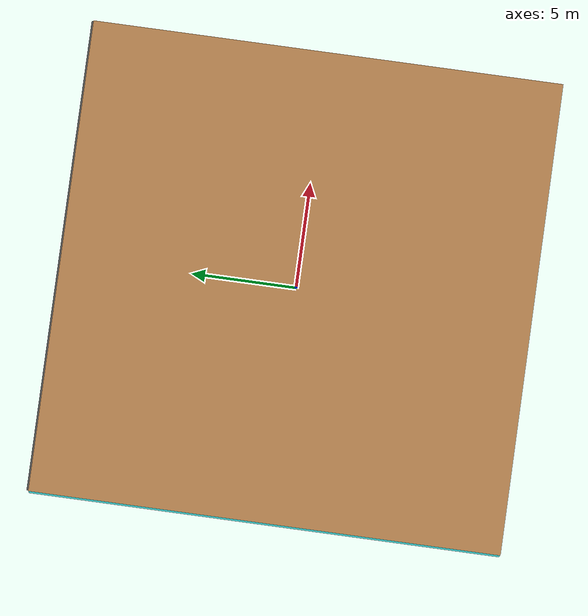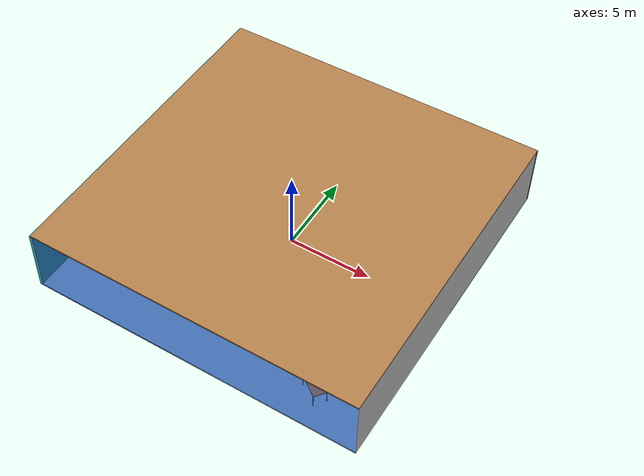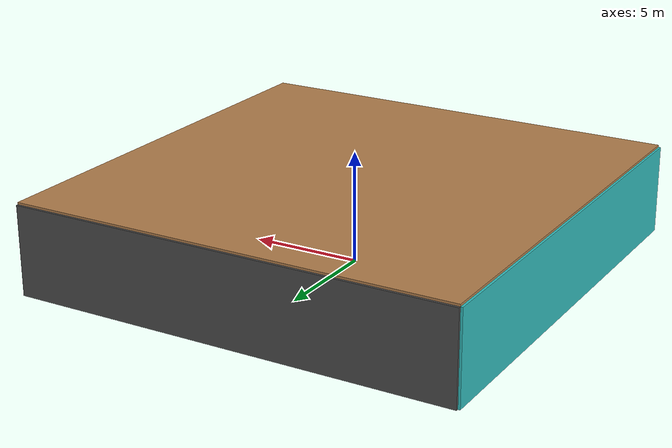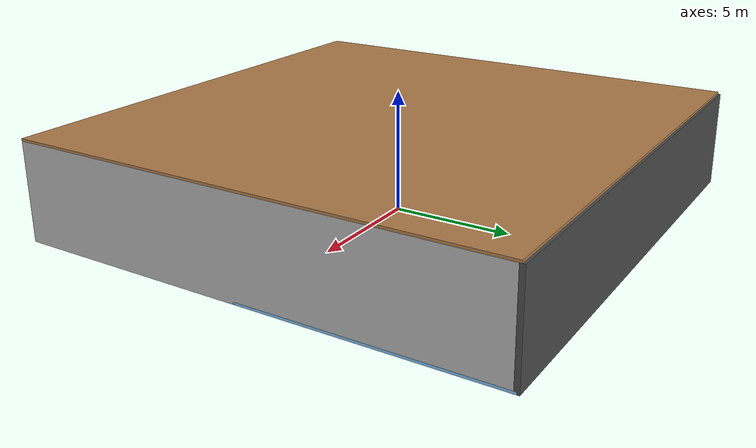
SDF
<sdf version="1.4">
 <world name="default">
  <physics type="ode">
   <max_step_size>0.001</max_step_size>
   <real_time_factor>1</real_time_factor>
   <real_time_update_rate>1000</real_time_update_rate>
   <gravity>0 0 -9.8</gravity>
  </physics>
  <scene><ambient>0.4 0.4 0.4 1</ambient><background>0.7 0.7 0.7 1</background><shadows>1</shadows></scene>
  <model name="Surrounding">
   <static>1</static>
   <link name="Ceiling">
    <collision name="Ceiling_Collision"><geometry><box><size>20 20 0.1</size></box></geometry></collision>
    <visual name="Ceiling_Visual">
     <geometry><box><size>20 20 0.1</size></box></geometry>
     <material>
      <script><uri>file://media/materials/scripts/gazebo.material</uri><name>Gazebo/WoodFloor</name></script>
     </material>
    </visual>
    <pose>0 0 4.05 0 0 0</pose>
   </link>
   <link name="Wall_South">
    <collision name="Wall_South_Collision">
     <geometry><box><size>20 0 4</size></box></geometry>
     <pose>0 0 2 0 -0 0</pose>
    </collision>
    <visual name="Wall_South_Visual">
     <pose>0 0 2 0 -0 0</pose>
     <geometry><box><size>20 0 4</size></box></geometry>
     <material>
      <script><uri>file://media/materials/scripts/gazebo.material</uri><name>Gazebo/BlueTransparent</name></script>
     </material>
    </visual>
    <velocity_decay><linear>0</linear><angular>0</angular></velocity_decay>
    <pose>0 -10 0 0 -0 0</pose>
   </link>
   <link name="Wall_East">
    <collision name="Wall_21_Collision">
     <geometry><box><size>20 0 4</size></box></geometry>
     <pose>0 0 2 0 -0 0</pose>
    </collision>
    <visual name="Wall_21_Visual">
     <pose>0 0 2 0 -0 0</pose>
     <geometry><box><size>20 0 4</size></box></geometry>
     <material>
      <script><uri>file://media/materials/scripts/gazebo.material</uri><name>Gazebo/PioneerBody</name></script>
     </material>
    </visual>
    <velocity_decay><linear>0</linear><angular>0</angular></velocity_decay>
    <pose>10 0 0 0 -0 1.5708</pose>
   </link>
   <link name="Wall_North">
    <collision name="Wall_22_Collision">
     <geometry><box><size>20 0.2 4</size></box></geometry>
     <pose>0 0 2 0 -0 0</pose>
    </collision>
    <visual name="Wall_22_Visual">
     <pose>0 0 2 0 -0 0</pose>
     <geometry><box><size>20 0.2 4</size></box></geometry>
     <material>
      <script><uri>file://media/materials/scripts/gazebo.material</uri><name>Gazebo/DarkGrey</name></script>
     </material>
    </visual>
    <velocity_decay><linear>0</linear><angular>0</angular></velocity_decay>
    <pose>0 10 0 0 -0 0</pose>
   </link>
   <link name="Wall_West">
    <collision name="Wall_23_Collision">
     <geometry><box><size>20 0.2 4</size></box></geometry>
     <pose>0 0 2 0 -0 0</pose>
    </collision>
    <visual name="Wall_23_Visual">
     <pose>0 0 2 0 -0 0</pose>
     <geometry><box><size>20 0.2 4</size></box></geometry>
     <material>
      <script><uri>file://media/materials/scripts/gazebo.material</uri><name>Gazebo/Turquoise</name></script>
     </material>
    </visual>
    <velocity_decay><linear>0</linear><angular>0</angular></velocity_decay>
    <pose>-10 0 0 0 0 -1.5708</pose>
   </link>
   <link name="Ground_link">
    <collision name="collision">
     <pose>0 0 .05 0 -0 0</pose>
     <geometry><box><size>20 20 0.1</size></box></geometry>
    </collision>
    <visual name="visual">
     <pose>0 0 .05 0 -0 0</pose>
     <geometry><box><size>20 20 0.1</size></box></geometry>
     <material>
      <script><uri>file://media/materials/scripts/gazebo.material</uri><name>Gazebo/SkyBlue</name></script>
     </material>
    </visual>
   </link>
   <static>1</static>
  </model>
  <spherical_coordinates>
   <surface_model>EARTH_WGS84</surface_model>
   <latitude_deg>0</latitude_deg>
   <longitude_deg>0</longitude_deg>
   <elevation>0</elevation>
   <heading_deg>0</heading_deg>
  </spherical_coordinates>
  <light name="lightball_0" type="diffuse">
   <diffuse>0.8 0.8 0.8 1</diffuse>
   <specular>0.2 0.2 0.2 1</specular>
   <attenuation>
    <range>100</range>
    <constant>0.7</constant>
    <linear>0.01</linear>
    <quadratic>0.001</quadratic>
   </attenuation>
   <direction>-0.5 0.1 -0.9</direction>
   <pose>6.13205017051 -9.75299838522 3.70720234917 0 0 0</pose>
  </light>
  <light name="lightball_1" type="diffuse">
   <diffuse>0.8 0.8 0.8 1</diffuse>
   <specular>0.2 0.2 0.2 1</specular>
   <attenuation>
    <range>100</range>
    <constant>0.7</constant>
    <linear>0.01</linear>
    <quadratic>0.001</quadratic>
   </attenuation>
   <direction>-0.5 0.1 -0.9</direction>
   <pose>-5.84200892797 2.98444818545 1.89208485884 0 0 0</pose>
  </light>
  <light name="lightball_2" type="diffuse">
   <diffuse>0.8 0.8 0.8 1</diffuse>
   <specular>0.2 0.2 0.2 1</specular>
   <attenuation>
    <range>100</range>
    <constant>0.7</constant>
    <linear>0.01</linear>
    <quadratic>0.001</quadratic>
   </attenuation>
   <direction>-0.5 0.1 -0.9</direction>
   <pose>6.81846284674 -6.68149352355 3.46263756795 0 0 0</pose>
  </light>
  <light name="lightball_3" type="diffuse">
   <diffuse>0.8 0.8 0.8 1</diffuse>
   <specular>0.2 0.2 0.2 1</specular>
   <attenuation>
    <range>100</range>
    <constant>0.7</constant>
    <linear>0.01</linear>
    <quadratic>0.001</quadratic>
   </attenuation>
   <direction>-0.5 0.1 -0.9</direction>
   <pose>-2.1017553503 0.327014374033 1.82100346306 0 0 0</pose>
  </light>
  <light name="lightball_4" type="diffuse">
   <diffuse>0.8 0.8 0.8 1</diffuse>
   <specular>0.2 0.2 0.2 1</specular>
   <attenuation>
    <range>100</range>
    <constant>0.7</constant>
    <linear>0.01</linear>
    <quadratic>0.001</quadratic>
   </attenuation>
   <direction>-0.5 0.1 -0.9</direction>
   <pose>1.93434856567 -6.50457261944 0.804580131225 0 0 0</pose>
  </light>
  <include><uri>model://cabinet</uri><pose>1.14503124828 7.16412977514 0 0 0 1.61688688132</pose></include>
  <include>
   <uri>model://robocup_3Dsim_goal</uri>
   <pose>5.64345822921 -4.3541900149 0 0 0 0.775216419666</pose>
  </include>
  <include><uri>model://table</uri><pose>6.47398900316 -8.10443756256 0 0 0 2.51038978676</pose></include>
  <include>
   <uri>model://construction_cone</uri>
   <pose>8.12505011966 -5.42423271523 0 0 0 2.27604656976</pose>
  </include>
  <include>
   <uri>model://robocup_3Dsim_goal</uri>
   <pose>7.8501795202 -1.86933360607 0 0 0 0.954385285786</pose>
  </include>
  <include><uri>model://table</uri><pose>7.02552141793 8.14617523686 0 0 0 3.00093468162</pose></include>
 </world>
</sdf>

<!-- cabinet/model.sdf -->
<sdf version="1.5">
  <model name="cabinet">
    <static>true</static>
    <link name="cabinet_bottom_plate">
      <inertial>
        <pose>0 0 -1 0 0 0</pose>
        <inertia>
          <ixx>2.050000</ixx>
          <ixy>0</ixy>
          <ixz>0</ixz>
          <iyy>2.050000</iyy>
          <iyz>0</iyz>
          <izz>2.050000</izz>
        </inertia>
        <mass>25.000000</mass>
      </inertial>
      <collision name="cabinet_bottom_plate_geom">
        <pose>0 0 0.010000 0 0 0</pose>
        <geometry>
          <box>
            <size>0.450000 0.450000 0.020000</size>
          </box>
        </geometry>
      </collision>
      <visual name="cabinet_bottom_plate_geom_visual">
        <pose>0 0 0.010000 0 0 0</pose>
        <geometry>
          <box>
            <size>0.450000 0.450000 0.020000</size>
          </box>
        </geometry>
        <material>
          <script>
            <uri>model://media/materials/scripts/gazebo.material</uri>
            <name>Gazebo/Wood</name>
          </script>
        </material>
      </visual>
      <collision name="cabinet_bottom_plate_geom_cabinet_back_plate">
        <pose>0.235000 0 0.510000 0 0 0</pose>
        <geometry>
          <box>
            <size>0.020000 0.450000 1.020000</size>
          </box>
        </geometry>
      </collision>
      <visual name="cabinet_bottom_plate_geom_cabinet_back_plate_visual">
        <pose>0.235000 0 0.510000 0 0 0</pose>
        <geometry>
          <box>
            <size>0.020000 0.450000 1.020000</size>
          </box>
        </geometry>
        <material>
          <script>
            <uri>model://media/materials/scripts/gazebo.material</uri>
            <name>Gazebo/Wood</name>
          </script>
        </material>
      </visual>
      <collision name="cabinet_bottom_plate_geom_cabinet_left_plate">
        <pose>0 0.235000 0.510000 0 0 0</pose>
        <geometry>
          <box>
            <size>0.450000 0.020000 1.020000</size>
          </box>
        </geometry>
      </collision>
      <visual name="cabinet_bottom_plate_geom_cabinet_left_plate_visual">
        <pose>0 0.235000 0.510000 0 0 0</pose>
        <geometry>
          <box>
            <size>0.450000 0.020000 1.020000</size>
          </box>
        </geometry>
        <material>
          <script>
            <uri>model://media/materials/scripts/gazebo.material</uri>
            <name>Gazebo/Wood</name>
          </script>
        </material>
      </visual>
      <collision name="cabinet_bottom_plate_geom_cabinet_middle_plate">
        <pose>0 0 0.510000 0 0 0</pose>
        <geometry>
          <box>
            <size>0.450000 0.450000 0.020000</size>
          </box>
        </geometry>
      </collision>
      <visual name="cabinet_bottom_plate_geom_cabinet_middle_plate_visual">
        <pose>0 0 0.510000 0 0 0</pose>
        <geometry>
          <box>
            <size>0.450000 0.450000 0.020000</size>
          </box>
        </geometry>
        <material>
          <script>
            <uri>model://media/materials/scripts/gazebo.material</uri>
            <name>Gazebo/Wood</name>
          </script>
        </material>
      </visual>
      <collision name="cabinet_bottom_plate_geom_cabinet_right_plate">
        <pose>0 -0.235000 0.510000 0 0 0</pose>
        <geometry>
          <box>
            <size>0.450000 0.020000 1.020000</size>
          </box>
        </geometry>
      </collision>
      <visual name="cabinet_bottom_plate_geom_cabinet_right_plate_visual">
        <pose>0 -0.235000 0.510000 0 0 0</pose>
        <geometry>
          <box>
            <size>0.450000 0.020000 1.020000</size>
          </box>
        </geometry>
        <material>
          <script>
            <uri>model://media/materials/scripts/gazebo.material</uri>
            <name>Gazebo/Wood</name>
          </script>
        </material>
      </visual>
      <collision name="cabinet_bottom_plate_geom_cabinet_top_plate">
        <pose>0 0 1.010000 0 0 0</pose>
        <geometry>
          <box>
            <size>0.450000 0.450000 0.020000</size>
          </box>
        </geometry>
      </collision>
      <visual name="cabinet_bottom_plate_geom_cabinet_top_plate_visual">
        <pose>0 0 1.010000 0 0 0</pose>
        <geometry>
          <box>
            <size>0.450000 0.450000 0.020000</size>
          </box>
        </geometry>
        <material>
          <script>
            <uri>model://media/materials/scripts/gazebo.material</uri>
            <name>Gazebo/Wood</name>
          </script>
        </material>
      </visual>
    </link>
  </model>
</sdf>

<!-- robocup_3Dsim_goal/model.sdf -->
<sdf version="1.5">
  <model name="robocup_3d_goal">
    <static>true</static>
    <link name="left_post">
      <pose>0 1.05 0.45 0 0 0</pose>
      <collision name="collision">
        <geometry>
          <cylinder>
            <radius>0.05</radius>
            <length>0.9</length>
          </cylinder>
        </geometry>
      </collision>
      <visual name="visual">
        <geometry>
          <cylinder>
            <radius>0.05</radius>
            <length>0.9</length>
          </cylinder>
        </geometry>
        <material>
          <script>
            <uri>file://media/materials/scripts/gazebo.material</uri>
            <name>Gazebo/ZincYellow</name>
          </script>
        </material>
      </visual>
    </link>
    <link name="left_support_horiz_lower">
      <pose>0.30 1.05 0.01 0 0 0</pose>
      <collision name="collision">
        <geometry>
          <box>
            <size>0.50 0.02 0.02</size>
          </box>
        </geometry>
      </collision>
      <visual name="visual">
        <geometry>
          <box>
            <size>0.50 0.02 0.02</size>
          </box>
        </geometry>
        <material>
          <script>
            <uri>file://media/materials/scripts/gazebo.material</uri>
            <name>Gazebo/White</name>
          </script>
        </material>
      </visual>
    </link>
    <link name="left_support_horiz_upper">
      <pose>0.30 1.05 0.79 0 0 0</pose>
      <collision name="collision">
        <geometry>
          <box>
            <size>0.50 0.02 0.02</size>
          </box>
        </geometry>
      </collision>
      <visual name="visual">
        <geometry>
          <box>
            <size>0.50 0.02 0.02</size>
          </box>
        </geometry>
        <material>
          <script>
            <uri>file://media/materials/scripts/gazebo.material</uri>
            <name>Gazebo/White</name>
          </script>
        </material>
      </visual>
    </link>
    <link name="left_support_vertical">
      <pose>0.56 1.05 0.4 0 1.5708 0</pose>
      <collision name="collision">
        <geometry>
          <box>
            <size>0.80 0.02 0.02</size>
          </box>
        </geometry>
      </collision>
      <visual name="visual">
        <geometry>
          <box>
            <size>0.80 0.02 0.02</size>
          </box>
        </geometry>
        <material>
          <script>
            <uri>file://media/materials/scripts/gazebo.material</uri>
            <name>Gazebo/White</name>
          </script>
        </material>
      </visual>
    </link>
    <link name="right_support_horiz_lower">
      <pose>0.30 -1.05 0.01 0 0 0</pose>
      <collision name="collision">
        <geometry>
          <box>
            <size>0.50 0.02 0.02</size>
          </box>
        </geometry>
      </collision>
      <visual name="visual">
        <geometry>
          <box>
            <size>0.50 0.02 0.02</size>
          </box>
        </geometry>
        <material>
          <script>
            <uri>file://media/materials/scripts/gazebo.material</uri>
            <name>Gazebo/White</name>
          </script>
        </material>
      </visual>
    </link>
    <link name="right_support_horiz_upper">
      <pose>0.30 -1.05 0.79 0 0 0</pose>
      <collision name="collision">
        <geometry>
          <box>
            <size>0.50 0.02 0.02</size>
          </box>
        </geometry>
      </collision>
      <visual name="visual">
        <geometry>
          <box>
            <size>0.50 0.02 0.02</size>
          </box>
        </geometry>
        <material>
          <script>
            <uri>file://media/materials/scripts/gazebo.material</uri>
            <name>Gazebo/White</name>
          </script>
        </material>
      </visual>
    </link>
    <link name="right_support_vertical">
      <pose>0.56 -1.05 0.4 0 1.5708 0</pose>
      <collision name="collision">
        <geometry>
          <box>
            <size>0.80 0.02 0.02</size>
          </box>
        </geometry>
      </collision>
      <visual name="visual">
        <geometry>
          <box>
            <size>0.80 0.02 0.02</size>
          </box>
        </geometry>
        <material>
          <script>
            <uri>file://media/materials/scripts/gazebo.material</uri>
            <name>Gazebo/White</name>
          </script>
        </material>
      </visual>
    </link>
    <link name="center_support_horiz_lower">
      <pose>0.56 0 0.01 0 1.5708 0</pose>
      <collision name="collision">
        <geometry>
          <box>
            <size>0.02 2.08 0.02</size>
          </box>
        </geometry>
      </collision>
      <visual name="visual">
        <geometry>
          <box>
            <size>0.02 2.08 0.02</size>
          </box>
        </geometry>
        <material>
          <script>
            <uri>file://media/materials/scripts/gazebo.material</uri>
            <name>Gazebo/White</name>
          </script>
        </material>
      </visual>
    </link>
    <link name="center_support_horiz_upper">
      <pose>0.56 0 0.79 0 1.5708 0</pose>
      <collision name="collision">
        <geometry>
          <box>
            <size>0.02 2.08 0.02</size>
          </box>
        </geometry>
      </collision>
      <visual name="visual">
        <geometry>
          <box>
            <size>0.02 2.08 0.02</size>
          </box>
        </geometry>
        <material>
          <script>
            <uri>file://media/materials/scripts/gazebo.material</uri>
            <name>Gazebo/White</name>
          </script>
        </material>
      </visual>
    </link>
    <link name="right_post">
      <pose>0 -1.05 0.45 0 0 0</pose>
      <collision name="collision">
        <geometry>
          <cylinder>
            <radius>0.05</radius>
            <length>0.9</length>
          </cylinder>
        </geometry>
      </collision>
      <visual name="visual">
        <geometry>
          <cylinder>
            <radius>0.05</radius>
            <length>0.9</length>
          </cylinder>
        </geometry>
        <material>
          <script>
            <uri>file://media/materials/scripts/gazebo.material</uri>
            <name>Gazebo/ZincYellow</name>
          </script>
        </material>
      </visual>
    </link>
    <link name="crossbar">
      <pose>0 0 0.85 1.57 1.57 0</pose>
      <collision name="collision">
        <geometry>
          <cylinder>
            <radius>0.05</radius>
            <length>2.0</length>
          </cylinder>
        </geometry>
      </collision>
      <visual name="visual">
        <geometry>
          <cylinder>
            <radius>0.05</radius>
            <length>2.0</length>
          </cylinder>
        </geometry>
        <material>
          <script>
            <uri>file://media/materials/scripts/gazebo.material</uri>
            <name>Gazebo/ZincYellow</name>
          </script>
        </material>
      </visual>
    </link>
    <link name="center_net">
      <pose>0.56 0 0.40 0 0 0</pose>
      <collision name="collision">
        <geometry>
          <box>
            <size>0.01 2.1 0.80</size>
          </box>
        </geometry>
      </collision>
      <visual name="visual">
        <geometry>
          <box>
            <size>0.01 2.1 0.80</size>
          </box>
        </geometry>
        <material>
          <script>
            <uri>model://../model_source/models/robocup09_spl_field/materials/scripts/</uri>
            <uri>model://../model_source/models/robocup09_spl_field/materials/textures/</uri>
            <name>RoboCup/Net</name>
          </script>
        </material>
      </visual>
    </link>
    <link name="left_net">
      <pose>0.30 1.05 0.40 0 0 0</pose>
      <collision name="collision">
        <geometry>
          <box>
            <size>0.50 0.01 0.76</size>
          </box>
        </geometry>
      </collision>
      <visual name="visual">
        <geometry>
          <box>
            <size>0.50 0.01 0.76</size>
          </box>
        </geometry>
        <material>
          <script>
            <uri>model://../model_source/models/robocup09_spl_field/materials/scripts/</uri>
            <uri>model://../model_source/models/robocup09_spl_field/materials/textures/</uri>
            <name>RoboCup/Net</name>
          </script>
        </material>
      </visual>
    </link>
    <link name="right_net">
      <pose>0.30 -1.05 0.40 0 0 0</pose>
      <collision name="collision">
        <geometry>
          <box>
            <size>0.50 0.01 0.76</size>
          </box>
        </geometry>
      </collision>
      <visual name="visual">
        <geometry>
          <box>
            <size>0.50 0.01 0.76</size>
          </box>
        </geometry>
        <material>
          <script>
            <uri>model://../model_source/models/robocup09_spl_field/materials/scripts/</uri>
            <uri>model://../model_source/models/robocup09_spl_field/materials/textures/</uri>
            <name>RoboCup/Net</name>
          </script>
        </material>
      </visual>
    </link>
  </model>
</sdf>

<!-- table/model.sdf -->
<sdf version="1.5">
  <model name="table">
    <static>true</static>
    <link name="link">
      <collision name="surface">
        <pose>0 0 1.0 0 0 0</pose>
        <geometry>
          <box>
            <size>1.5 0.8 0.03</size>
          </box>
        </geometry>
        <surface>
          <friction>
            <ode>
              <mu>0.6</mu>
              <mu2>0.6</mu2>
            </ode>
          </friction>
        </surface>
      </collision>
      <visual name="visual1">
        <pose>0 0 1.0 0 0 0</pose>
        <geometry>
          <box>
            <size>1.5 0.8 0.03</size>
          </box>
        </geometry>
        <material>
          <script>
            <uri>model://media/materials/scripts/gazebo.material</uri>
            <name>Gazebo/Wood</name>
          </script>
        </material>
      </visual>
      <collision name="front_left_leg">
        <pose>0.68 0.38 0.5 0 0 0</pose>
        <geometry>
          <cylinder>
            <radius>0.02</radius>
            <length>1.0</length>
          </cylinder>
        </geometry>
      </collision>
      <visual name="front_left_leg">
        <pose>0.68 0.38 0.5 0 0 0</pose>
        <geometry>
          <cylinder>
            <radius>0.02</radius>
            <length>1.0</length>
          </cylinder>
        </geometry>
        <material>
          <script>
            <uri>model://media/materials/scripts/gazebo.material</uri>
            <name>Gazebo/Grey</name>
          </script>
        </material>
      </visual>
      <collision name="front_right_leg">
        <pose>0.68 -0.38 0.5 0 0 0</pose>
        <geometry>
          <cylinder>
            <radius>0.02</radius>
            <length>1.0</length>
          </cylinder>
        </geometry>
      </collision>
      <visual name="front_right_leg">
        <pose>0.68 -0.38 0.5 0 0 0</pose>
        <geometry>
          <cylinder>
            <radius>0.02</radius>
            <length>1.0</length>
          </cylinder>
        </geometry>
        <material>
          <script>
            <uri>model://media/materials/scripts/gazebo.material</uri>
            <name>Gazebo/Grey</name>
          </script>
        </material>
      </visual>
      <collision name="back_right_leg">
        <pose>-0.68 -0.38 0.5 0 0 0</pose>
        <geometry>
          <cylinder>
            <radius>0.02</radius>
            <length>1.0</length>
          </cylinder>
        </geometry>
      </collision>
      <visual name="back_right_leg">
        <pose>-0.68 -0.38 0.5 0 0 0</pose>
        <geometry>
          <cylinder>
            <radius>0.02</radius>
            <length>1.0</length>
          </cylinder>
        </geometry>
        <material>
          <script>
            <uri>model://media/materials/scripts/gazebo.material</uri>
            <name>Gazebo/Grey</name>
          </script>
        </material>
      </visual>
      <collision name="back_left_leg">
        <pose>-0.68 0.38 0.5 0 0 0</pose>
        <geometry>
          <cylinder>
            <radius>0.02</radius>
            <length>1.0</length>
          </cylinder>
        </geometry>
      </collision>
      <visual name="back_left_leg">
        <pose>-0.68 0.38 0.5 0 0 0</pose>
        <geometry>
          <cylinder>
            <radius>0.02</radius>
            <length>1.0</length>
          </cylinder>
        </geometry>
        <material>
          <script>
            <uri>model://media/materials/scripts/gazebo.material</uri>
            <name>Gazebo/Grey</name>
          </script>
        </material>
      </visual>
    </link>
  </model>
</sdf>

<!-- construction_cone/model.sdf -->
<sdf version="1.5">
  <model name="Construction Cone">
    <link name="link">
      <collision name="collision">
        <geometry>
          <mesh>
            <scale>10 10 10</scale>
            <uri>file://isr-testbed/construction_cone/meshes/construction_cone.dae</uri>
          </mesh>
        </geometry>
      </collision>
      <visual name="visual">
        <geometry>
          <mesh>
            <scale>10 10 10</scale>
            <uri>file://isr-testbed/construction_cone/meshes/construction_cone.dae</uri>
          </mesh>
        </geometry>
      </visual>
    </link>
  </model>
</sdf>
